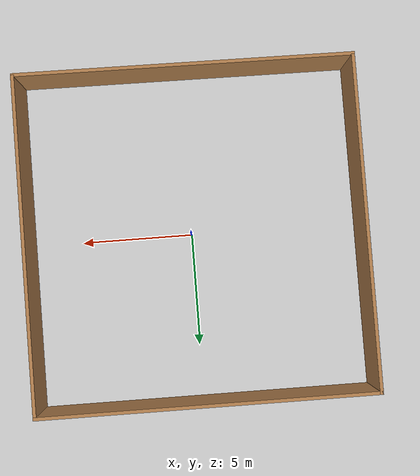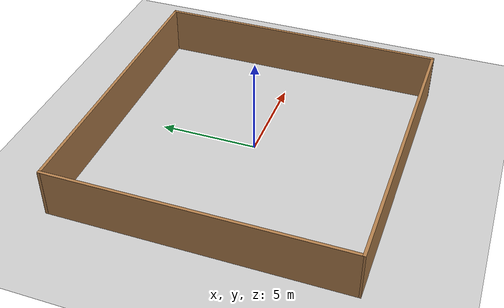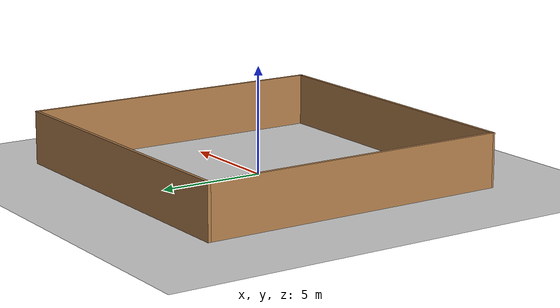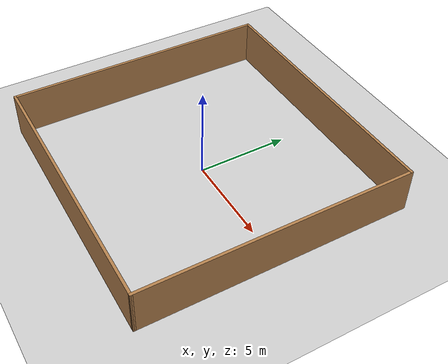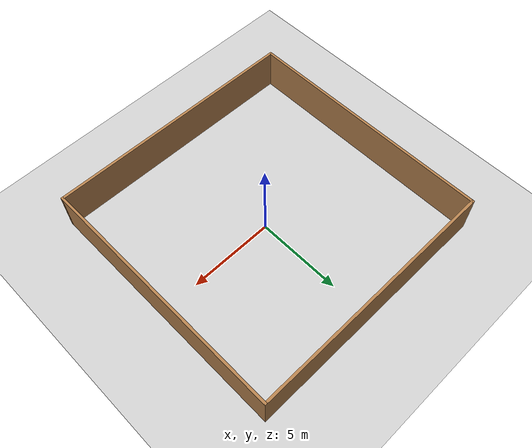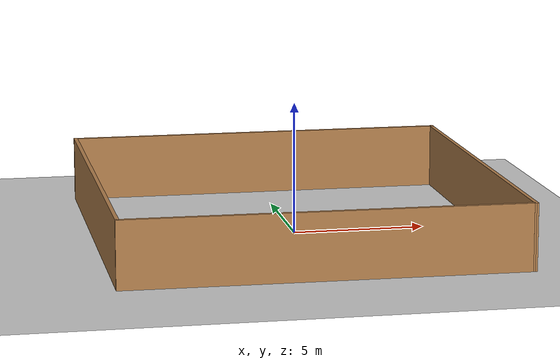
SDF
<sdf version="1.7">
 <world name="default">
  <light name="sun" type="directional">
   <pose>0 0 10 0 -0 0</pose>
   <diffuse>0.8 0.8 0.8 1</diffuse>
   <specular>0.2 0.2 0.2 1</specular>
   <attenuation>
    <range>1000</range>
    <constant>0.9</constant>
    <linear>0.01</linear>
    <quadratic>0.001</quadratic>
   </attenuation>
   <direction>-0.5 0.1 -0.9</direction>
   <spot><inner_angle>0</inner_angle><outer_angle>0</outer_angle><falloff>0</falloff></spot>
  </light>
  <model name="ground_plane">
   <static>1</static>
   <link name="link">
    <collision name="collision">
     <geometry><plane><normal>0 0 1</normal><size>100 100</size></plane></geometry>
     <surface><friction><ode><mu>100</mu><mu2>50</mu2></ode></friction></surface>
    </collision>
    <visual name="visual">
     <cast_shadows>0</cast_shadows>
     <geometry><plane><normal>0 0 1</normal><size>100 100</size></plane></geometry>
     <material>
      <script><uri>file://media/materials/scripts/gazebo.material</uri><name>Gazebo/Grey</name></script>
     </material>
    </visual>
   </link>
  </model>
  <gravity>0 0 -9.8</gravity>
  <magnetic_field>6e-06 2.3e-05 -4.2e-05</magnetic_field>
  <atmosphere type="adiabatic"/>
  <physics name="default_physics" default="0" type="ode">
   <max_step_size>0.001</max_step_size>
   <real_time_factor>1</real_time_factor>
   <real_time_update_rate>1000</real_time_update_rate>
  </physics>
  <scene><ambient>0.4 0.4 0.4 1</ambient><background>0.7 0.7 0.7 1</background><shadows>1</shadows></scene>
  <audio><device>default</device></audio>
  <spherical_coordinates>
   <surface_model>EARTH_WGS84</surface_model>
   <latitude_deg>0</latitude_deg>
   <longitude_deg>0</longitude_deg>
   <elevation>0</elevation>
   <heading_deg>0</heading_deg>
  </spherical_coordinates>
  <model name="mid">
   <pose>-0.167012 -0.01353 0 0 -0 0</pose>
   <link name="Wall_25">
    <collision name="Wall_25_Collision">
     <geometry><box><size>15 0.15 2.5</size></box></geometry>
     <pose>0 0 1.25 0 -0 0</pose>
    </collision>
    <visual name="Wall_25_Visual">
     <pose>0 0 1.25 0 -0 0</pose>
     <geometry><box><size>15 0.15 2.5</size></box></geometry>
     <material>
      <script><uri>file://media/materials/scripts/gazebo.material</uri><name>Gazebo/Wood</name></script>
      <ambient>1 1 1 1</ambient>
     </material>
     <meta><layer>0</layer></meta>
    </visual>
    <pose>-0 7.42538 0 0 -0 0</pose>
   </link>
   <link name="Wall_26">
    <collision name="Wall_26_Collision">
     <geometry><box><size>15 0.15 2.5</size></box></geometry>
     <pose>0 0 1.25 0 -0 0</pose>
    </collision>
    <visual name="Wall_26_Visual">
     <pose>0 0 1.25 0 -0 0</pose>
     <geometry><box><size>15 0.15 2.5</size></box></geometry>
     <material>
      <script><uri>file://media/materials/scripts/gazebo.material</uri><name>Gazebo/Wood</name></script>
      <ambient>1 1 1 1</ambient>
     </material>
     <meta><layer>0</layer></meta>
    </visual>
    <pose>7.425 0.000376 0 0 -0 -1.5708</pose>
   </link>
   <link name="Wall_27">
    <collision name="Wall_27_Collision">
     <geometry><box><size>15.0008 0.15 2.5</size></box></geometry>
     <pose>0 0 1.25 0 -0 0</pose>
    </collision>
    <visual name="Wall_27_Visual">
     <pose>0 0 1.25 0 -0 0</pose>
     <geometry><box><size>15.0008 0.15 2.5</size></box></geometry>
     <material>
      <script><uri>file://media/materials/scripts/gazebo.material</uri><name>Gazebo/Wood</name></script>
      <ambient>1 1 1 1</ambient>
     </material>
     <meta><layer>0</layer></meta>
    </visual>
    <pose>-0 -7.34962 0 0 -0 3.13149</pose>
   </link>
   <link name="Wall_29">
    <collision name="Wall_29_Collision">
     <geometry><box><size>14.75 0.15 2.5</size></box></geometry>
     <pose>0 0 1.25 0 -0 0</pose>
    </collision>
    <visual name="Wall_29_Visual">
     <pose>0 0 1.25 0 -0 0</pose>
     <geometry><box><size>14.75 0.15 2.5</size></box></geometry>
     <material>
      <script><uri>file://media/materials/scripts/gazebo.material</uri><name>Gazebo/Wood</name></script>
      <ambient>1 1 1 1</ambient>
     </material>
     <meta><layer>0</layer></meta>
    </visual>
    <pose>-7.425 0.125376 0 0 -0 -1.5708</pose>
   </link>
   <static>1</static>
  </model>
 </world>
</sdf>
